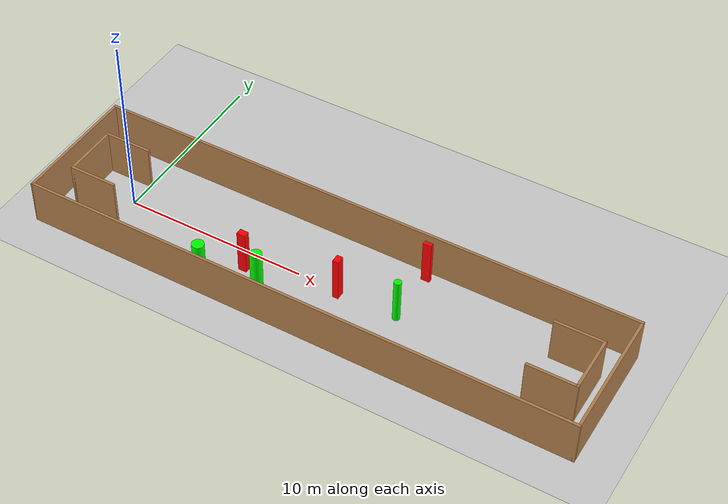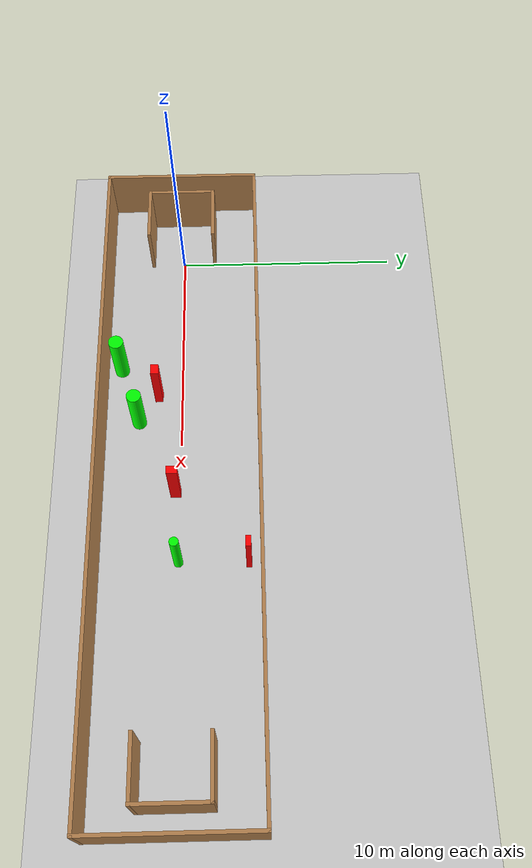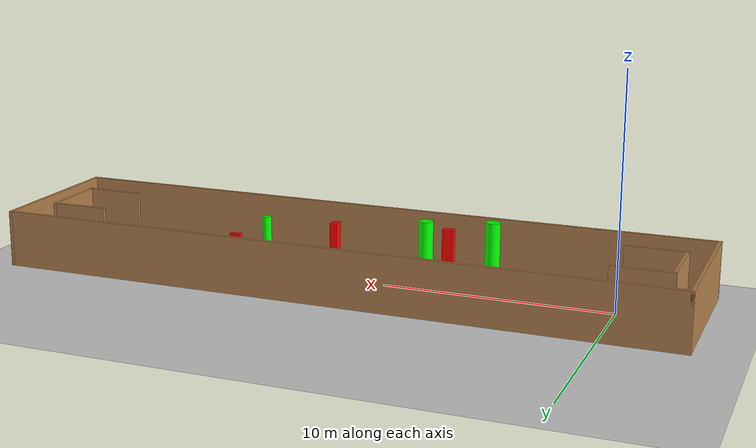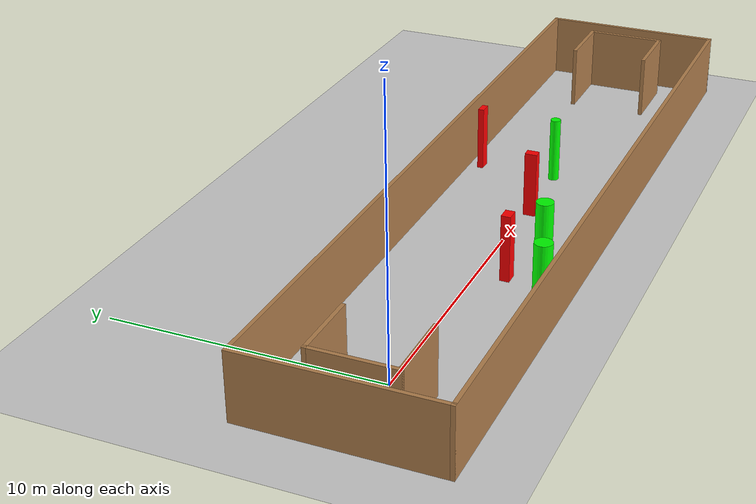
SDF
<sdf version="1.7">
 <world name="default">
  <light name="sun" type="directional">
   <pose>0 0 10 0 -0 0</pose>
   <diffuse>0.8 0.8 0.8 1</diffuse>
   <specular>0.2 0.2 0.2 1</specular>
   <attenuation>
    <range>1000</range>
    <constant>0.9</constant>
    <linear>0.01</linear>
    <quadratic>0.001</quadratic>
   </attenuation>
   <direction>-0.5 0.1 -0.9</direction>
   <spot><inner_angle>0</inner_angle><outer_angle>0</outer_angle><falloff>0</falloff></spot>
  </light>
  <model name="ground_plane">
   <static>1</static>
   <link name="link">
    <collision name="collision">
     <geometry><plane><normal>0 0 1</normal><size>100 100</size></plane></geometry>
     <surface>
      <contact><collide_bitmask>65535</collide_bitmask></contact>
      <friction><ode><mu>100</mu><mu2>50</mu2></ode></friction>
     </surface>
    </collision>
    <visual name="visual">
     <cast_shadows>0</cast_shadows>
     <geometry><plane><normal>0 0 1</normal><size>100 100</size></plane></geometry>
     <material>
      <script><uri>file://media/materials/scripts/gazebo.material</uri><name>Gazebo/Grey</name></script>
     </material>
    </visual>
   </link>
  </model>
  <gravity>0 0 -9.8</gravity>
  <magnetic_field>6e-06 2.3e-05 -4.2e-05</magnetic_field>
  <atmosphere type="adiabatic"/>
  <physics type="ode">
   <max_step_size>0.001</max_step_size>
   <real_time_factor>1</real_time_factor>
   <real_time_update_rate>1000</real_time_update_rate>
  </physics>
  <scene><ambient>0.4 0.4 0.4 1</ambient><background>0.7 0.7 0.7 1</background><shadows>1</shadows></scene>
  <spherical_coordinates>
   <surface_model>EARTH_WGS84</surface_model>
   <latitude_deg>0</latitude_deg>
   <longitude_deg>0</longitude_deg>
   <elevation>0</elevation>
   <heading_deg>0</heading_deg>
  </spherical_coordinates>
  <model name="my_base_walls">
   <link name="Wall_0">
    <collision name="Wall_0_Collision">
     <geometry><box><size>7.15 0.15 2.5</size></box></geometry>
     <pose>0 0 1.25 0 -0 0</pose>
    </collision>
    <visual name="Wall_0_Visual">
     <pose>0 0 1.25 0 -0 0</pose>
     <geometry><box><size>7.15 0.15 2.5</size></box></geometry>
     <material>
      <script><uri>file://media/materials/scripts/gazebo.material</uri><name>Gazebo/Wood</name></script>
      <ambient>1 1 1 1</ambient>
     </material>
     <meta><layer>0</layer></meta>
    </visual>
    <pose>-15 0 0 0 -0 1.5708</pose>
   </link>
   <link name="Wall_10">
    <collision name="Wall_10_Collision">
     <geometry><box><size>2.65 0.15 2.5</size></box></geometry>
     <pose>0 0 1.25 0 -0 0</pose>
    </collision>
    <visual name="Wall_10_Visual">
     <pose>0 0 1.25 0 -0 0</pose>
     <geometry><box><size>2.65 0.15 2.5</size></box></geometry>
     <material>
      <script><uri>file://media/materials/scripts/gazebo.material</uri><name>Gazebo/Wood</name></script>
      <ambient>1 1 1 1</ambient>
     </material>
     <meta><layer>0</layer></meta>
    </visual>
    <pose>-12.75 -1.5 0 0 -0 0</pose>
   </link>
   <link name="Wall_12">
    <collision name="Wall_12_Collision">
     <geometry><box><size>2.65 0.15 2.5</size></box></geometry>
     <pose>0 0 1.25 0 -0 0</pose>
    </collision>
    <visual name="Wall_12_Visual">
     <pose>0 0 1.25 0 -0 0</pose>
     <geometry><box><size>2.65 0.15 2.5</size></box></geometry>
     <material>
      <script><uri>file://media/materials/scripts/gazebo.material</uri><name>Gazebo/Wood</name></script>
      <ambient>1 1 1 1</ambient>
     </material>
     <meta><layer>0</layer></meta>
    </visual>
    <pose>-12.75 1.5 0 0 -0 0</pose>
   </link>
   <link name="Wall_14">
    <collision name="Wall_14_Collision">
     <geometry><box><size>3.15 0.15 2.5</size></box></geometry>
     <pose>0 0 1.25 0 -0 0</pose>
    </collision>
    <visual name="Wall_14_Visual">
     <pose>0 0 1.25 0 -0 0</pose>
     <geometry><box><size>3.15 0.15 2.5</size></box></geometry>
     <material>
      <script><uri>file://media/materials/scripts/gazebo.material</uri><name>Gazebo/Wood</name></script>
      <ambient>1 1 1 1</ambient>
     </material>
     <meta><layer>0</layer></meta>
    </visual>
    <pose>14 0 0 0 -0 -1.5708</pose>
   </link>
   <link name="Wall_15">
    <collision name="Wall_15_Collision">
     <geometry><box><size>2.65 0.15 2.5</size></box></geometry>
     <pose>0 0 1.25 0 -0 0</pose>
    </collision>
    <visual name="Wall_15_Visual">
     <pose>0 0 1.25 0 -0 0</pose>
     <geometry><box><size>2.65 0.15 2.5</size></box></geometry>
     <material>
      <script><uri>file://media/materials/scripts/gazebo.material</uri><name>Gazebo/Wood</name></script>
      <ambient>1 1 1 1</ambient>
     </material>
     <meta><layer>0</layer></meta>
    </visual>
    <pose>12.75 -1.5 0 0 -0 3.14159</pose>
   </link>
   <link name="Wall_17">
    <collision name="Wall_17_Collision">
     <geometry><box><size>2.65 0.15 2.5</size></box></geometry>
     <pose>0 0 1.25 0 -0 0</pose>
    </collision>
    <visual name="Wall_17_Visual">
     <pose>0 0 1.25 0 -0 0</pose>
     <geometry><box><size>2.65 0.15 2.5</size></box></geometry>
     <material>
      <script><uri>file://media/materials/scripts/gazebo.material</uri><name>Gazebo/Wood</name></script>
      <ambient>1 1 1 1</ambient>
     </material>
     <meta><layer>0</layer></meta>
    </visual>
    <pose>12.75 1.5 0 0 -0 3.14159</pose>
   </link>
   <link name="Wall_2">
    <collision name="Wall_2_Collision">
     <geometry><box><size>30.15 0.15 2.5</size></box></geometry>
     <pose>0 0 1.25 0 -0 0</pose>
    </collision>
    <visual name="Wall_2_Visual">
     <pose>0 0 1.25 0 -0 0</pose>
     <geometry><box><size>30.15 0.15 2.5</size></box></geometry>
     <material>
      <script><uri>file://media/materials/scripts/gazebo.material</uri><name>Gazebo/Wood</name></script>
      <ambient>1 1 1 1</ambient>
     </material>
     <meta><layer>0</layer></meta>
    </visual>
    <pose>-0 -3.5 0 0 -0 0</pose>
   </link>
   <link name="Wall_4">
    <collision name="Wall_4_Collision">
     <geometry><box><size>30.15 0.15 2.5</size></box></geometry>
     <pose>0 0 1.25 0 -0 0</pose>
    </collision>
    <visual name="Wall_4_Visual">
     <pose>0 0 1.25 0 -0 0</pose>
     <geometry><box><size>30.15 0.15 2.5</size></box></geometry>
     <material>
      <script><uri>file://media/materials/scripts/gazebo.material</uri><name>Gazebo/Wood</name></script>
      <ambient>1 1 1 1</ambient>
     </material>
     <meta><layer>0</layer></meta>
    </visual>
    <pose>-0 3.5 0 0 -0 0</pose>
   </link>
   <link name="Wall_6">
    <collision name="Wall_6_Collision">
     <geometry><box><size>7.15 0.15 2.5</size></box></geometry>
     <pose>0 0 1.25 0 -0 0</pose>
    </collision>
    <visual name="Wall_6_Visual">
     <pose>0 0 1.25 0 -0 0</pose>
     <geometry><box><size>7.15 0.15 2.5</size></box></geometry>
     <material>
      <script><uri>file://media/materials/scripts/gazebo.material</uri><name>Gazebo/Wood</name></script>
      <ambient>1 1 1 1</ambient>
     </material>
     <meta><layer>0</layer></meta>
    </visual>
    <pose>15 0 0 0 -0 -1.5708</pose>
   </link>
   <link name="Wall_9">
    <collision name="Wall_9_Collision">
     <geometry><box><size>3.15 0.15 2.5</size></box></geometry>
     <pose>0 0 1.25 0 -0 0</pose>
    </collision>
    <visual name="Wall_9_Visual">
     <pose>0 0 1.25 0 -0 0</pose>
     <geometry><box><size>3.15 0.15 2.5</size></box></geometry>
     <material>
      <script><uri>file://media/materials/scripts/gazebo.material</uri><name>Gazebo/Wood</name></script>
      <ambient>1 1 1 1</ambient>
     </material>
     <meta><layer>0</layer></meta>
    </visual>
    <pose>-14 0 0 0 -0 -1.5708</pose>
   </link>
   <static>1</static>
   <pose>11.5 0 0 0 -0 0</pose>
  </model>
  <model name="cylinder1">
   <static>1</static>
   <link name="link">
    <inertial>
     <mass>1</mass>
     <inertia><ixx>0.5</ixx><ixy>0</ixy><ixz>0</ixz><iyy>0.5</iyy><iyz>0</iyz><izz>1</izz></inertia>
    </inertial>
    <collision name="collision">
     <geometry><cylinder><radius>0.31857755341811406</radius><length>2.5</length></cylinder></geometry>
    </collision>
    <visual name="visual">
     <geometry><cylinder><radius>0.31857755341811406</radius><length>2.5</length></cylinder></geometry>
     <material>
      <ambient>0 1 0 1</ambient>
      <diffuse>0 1 0 1</diffuse>
      <specular>0.1 0.1 0.1 1</specular>
      <emissive>0 0 0 0</emissive>
     </material>
    </visual>
   </link>
   <pose>8.792004555046105 -1.9165398655453005 1.25 0 0 0</pose>
  </model>
  <model name="cylinder2">
   <static>1</static>
   <link name="link">
    <inertial>
     <mass>1</mass>
     <inertia><ixx>0.5</ixx><ixy>0</ixy><ixz>0</ixz><iyy>0.5</iyy><iyz>0</iyz><izz>1</izz></inertia>
    </inertial>
    <collision name="collision">
     <geometry><cylinder><radius>0.19786410143903038</radius><length>2.5</length></cylinder></geometry>
    </collision>
    <visual name="visual">
     <geometry><cylinder><radius>0.19786410143903038</radius><length>2.5</length></cylinder></geometry>
     <material>
      <ambient>0 1 0 1</ambient>
      <diffuse>0 1 0 1</diffuse>
      <specular>0.1 0.1 0.1 1</specular>
      <emissive>0 0 0 0</emissive>
     </material>
    </visual>
   </link>
   <pose>15.561379856528974 -0.05894759559648932 1.25 0 0 0</pose>
  </model>
  <model name="cylinder3">
   <static>1</static>
   <link name="link">
    <inertial>
     <mass>1</mass>
     <inertia><ixx>0.5</ixx><ixy>0</ixy><ixz>0</ixz><iyy>0.5</iyy><iyz>0</iyz><izz>1</izz></inertia>
    </inertial>
    <collision name="collision">
     <geometry><cylinder><radius>0.3280654767184433</radius><length>2.5</length></cylinder></geometry>
    </collision>
    <visual name="visual">
     <geometry><cylinder><radius>0.3280654767184433</radius><length>2.5</length></cylinder></geometry>
     <material>
      <ambient>0 1 0 1</ambient>
      <diffuse>0 1 0 1</diffuse>
      <specular>0.1 0.1 0.1 1</specular>
      <emissive>0 0 0 0</emissive>
     </material>
    </visual>
   </link>
   <pose>6.028771425852964 -2.79892563786358 1.25 0 0 0</pose>
  </model>
  <model name="box1">
   <static>1</static>
   <link name="link">
    <inertial>
     <mass>1</mass>
     <inertia><ixx>0.083</ixx><ixy>0</ixy><ixz>0</ixz><iyy>0.083</iyy><iyz>0</iyz><izz>0.083</izz></inertia>
    </inertial>
    <collision name="collision">
     <geometry><box><size>0.47157531744411857 0.3476206184476357 2.5</size></box></geometry>
    </collision>
    <visual name="visual">
     <geometry><box><size>0.47157531744411857 0.3476206184476357 2.5</size></box></geometry>
     <material>
      <ambient>1 0 0 1</ambient>
      <diffuse>1 0 0 1</diffuse>
      <specular>0.1 0.1 0.1 1</specular>
      <emissive>0 0 0 0</emissive>
     </material>
    </visual>
    <sensor name="my_contact" type="contact">
     <contact><collision>box_collision</collision><topic>__default_topic__</topic></contact>
    </sensor>
   </link>
   <pose>7.477246909741034 -1.0518134490193956 1.25 0 0 0</pose>
  </model>
  <model name="box2">
   <static>1</static>
   <link name="link">
    <inertial>
     <mass>1</mass>
     <inertia><ixx>0.083</ixx><ixy>0</ixy><ixz>0</ixz><iyy>0.083</iyy><iyz>0</iyz><izz>0.083</izz></inertia>
    </inertial>
    <collision name="collision">
     <geometry><box><size>0.33090242043130746 0.4554032652062533 2.5</size></box></geometry>
    </collision>
    <visual name="visual">
     <geometry><box><size>0.33090242043130746 0.4554032652062533 2.5</size></box></geometry>
     <material>
      <ambient>1 0 0 1</ambient>
      <diffuse>1 0 0 1</diffuse>
      <specular>0.1 0.1 0.1 1</specular>
      <emissive>0 0 0 0</emissive>
     </material>
    </visual>
    <sensor name="my_contact" type="contact">
     <contact><collision>box_collision</collision><topic>__default_topic__</topic></contact>
    </sensor>
   </link>
   <pose>12.365186192505247 -0.21107063929366543 1.25 0 0 0</pose>
  </model>
  <model name="box3">
   <static>1</static>
   <link name="link">
    <inertial>
     <mass>1</mass>
     <inertia><ixx>0.083</ixx><ixy>0</ixy><ixz>0</ixz><iyy>0.083</iyy><iyz>0</iyz><izz>0.083</izz></inertia>
    </inertial>
    <collision name="collision">
     <geometry><box><size>0.4628634020024101 0.2261566271265808 2.5</size></box></geometry>
    </collision>
    <visual name="visual">
     <geometry><box><size>0.4628634020024101 0.2261566271265808 2.5</size></box></geometry>
     <material>
      <ambient>1 0 0 1</ambient>
      <diffuse>1 0 0 1</diffuse>
      <specular>0.1 0.1 0.1 1</specular>
      <emissive>0 0 0 0</emissive>
     </material>
    </visual>
    <sensor name="my_contact" type="contact">
     <contact><collision>box_collision</collision><topic>__default_topic__</topic></contact>
    </sensor>
   </link>
   <pose>15.585726066864039 2.9355934954665877 1.25 0 0 0</pose>
  </model>
 </world>
</sdf>
